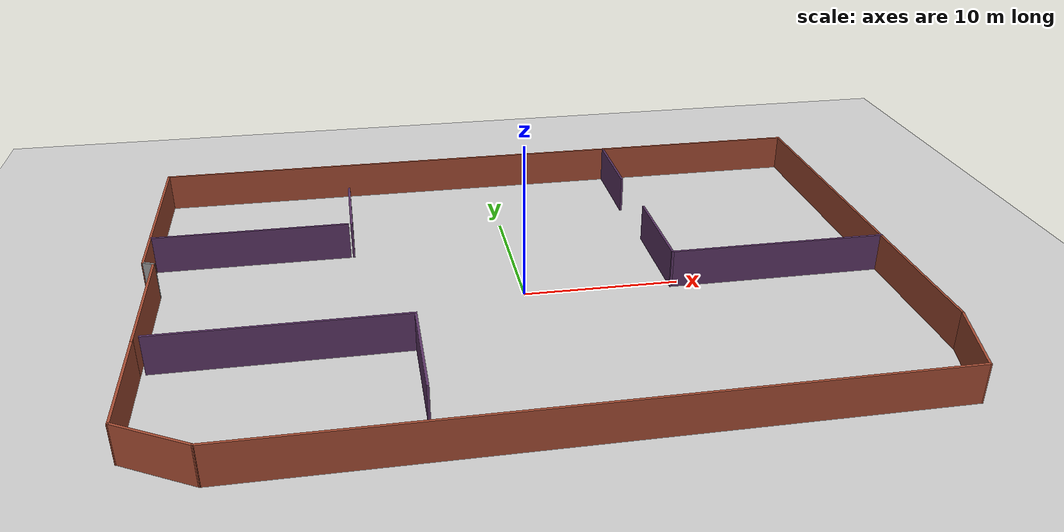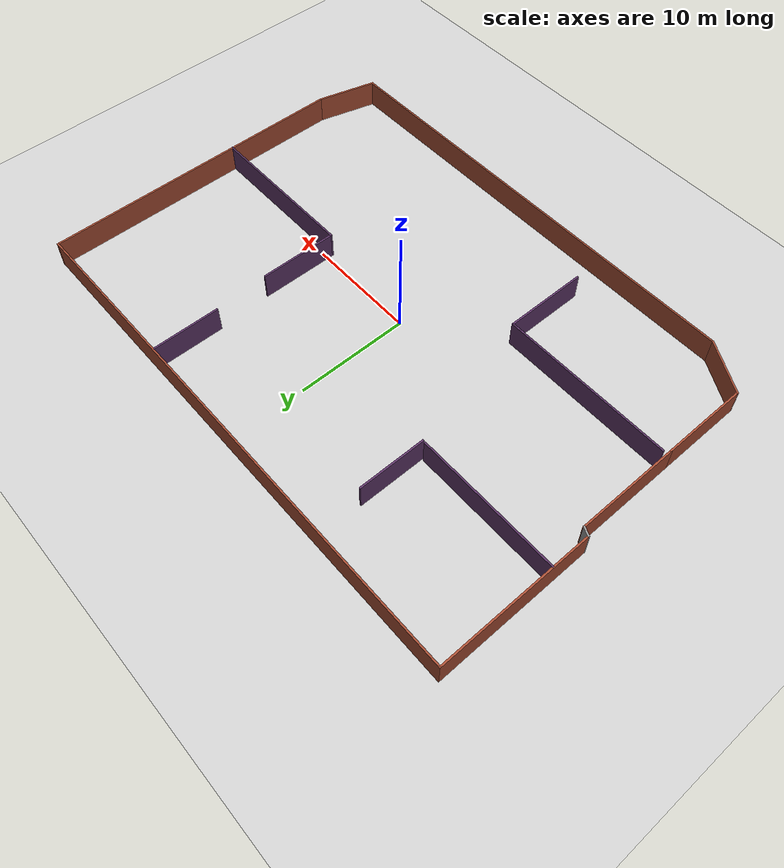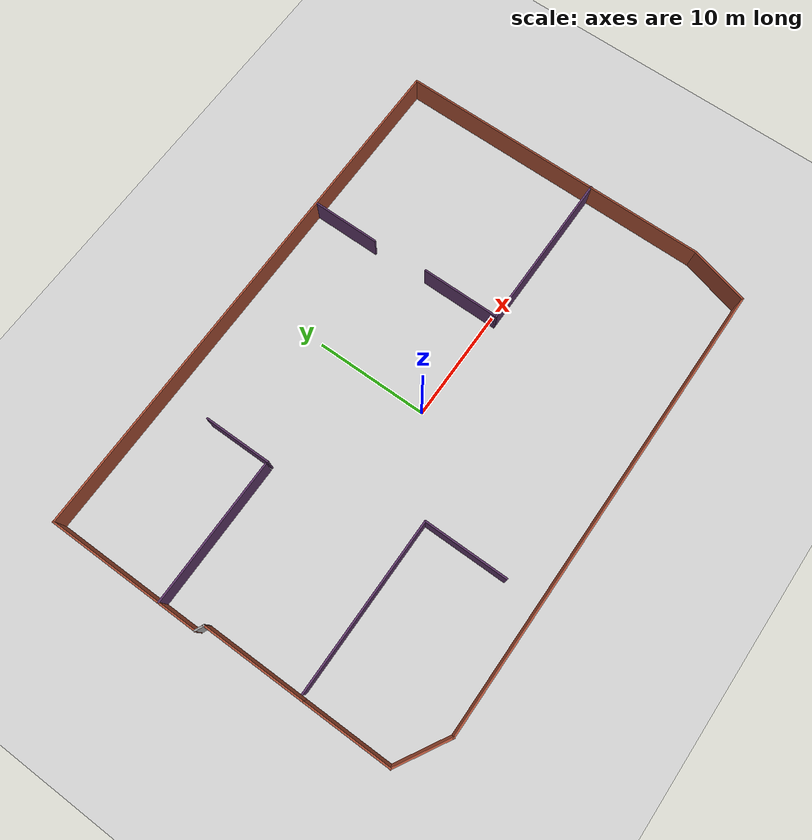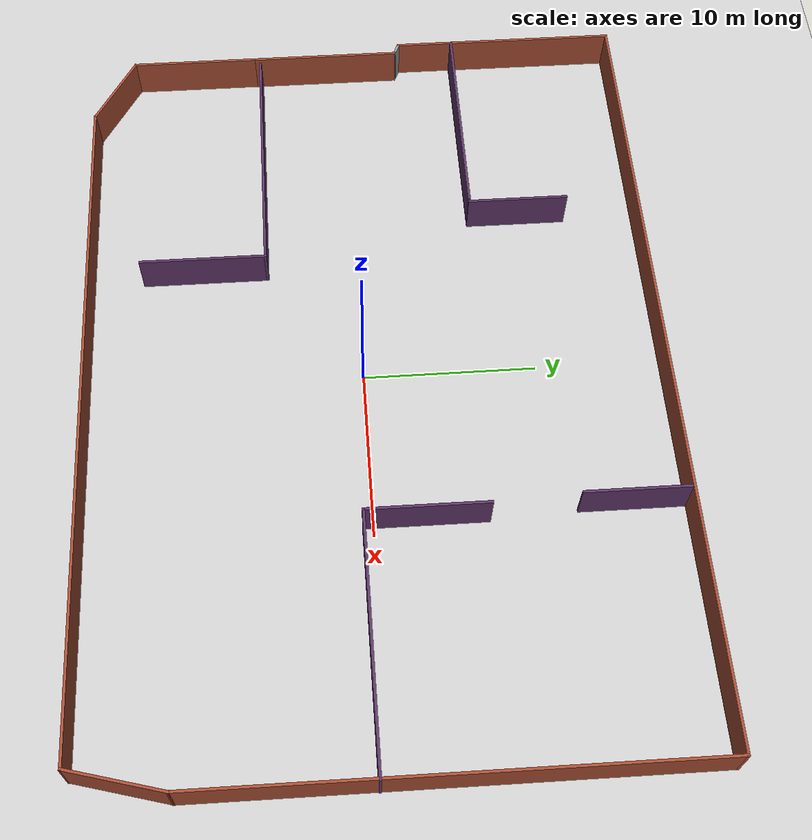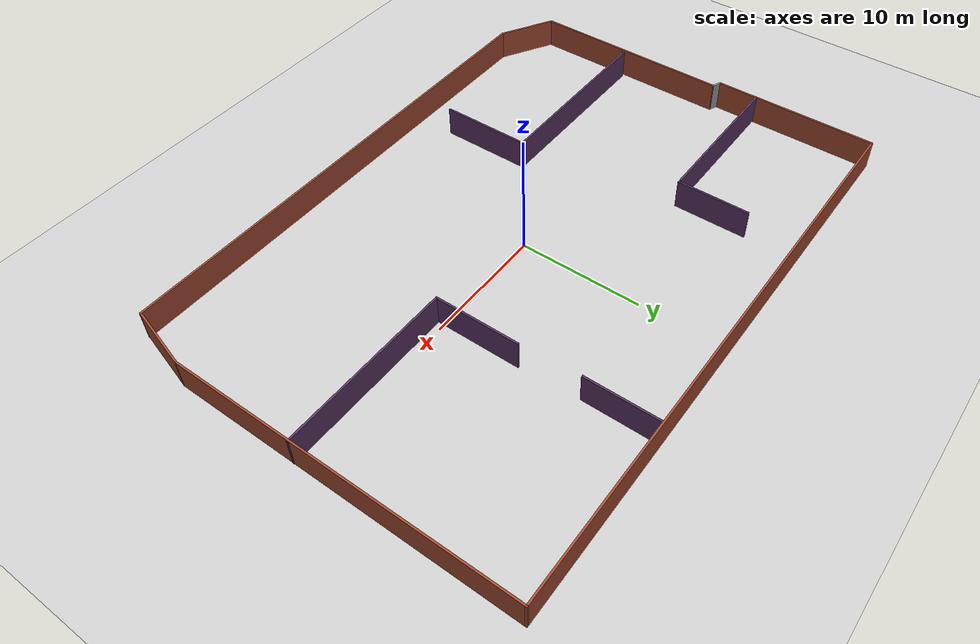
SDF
<sdf version="1.7">
 <world name="default">
  <light name="sun" type="directional">
   <pose>0 0 10 0 -0 0</pose>
   <diffuse>0.8 0.8 0.8 1</diffuse>
   <specular>0.2 0.2 0.2 1</specular>
   <attenuation>
    <range>1000</range>
    <constant>0.9</constant>
    <linear>0.01</linear>
    <quadratic>0.001</quadratic>
   </attenuation>
   <direction>-0.5 0.1 -0.9</direction>
   <spot><inner_angle>0</inner_angle><outer_angle>0</outer_angle><falloff>0</falloff></spot>
  </light>
  <model name="ground_plane">
   <static>1</static>
   <link name="link">
    <collision name="collision">
     <geometry><plane><normal>0 0 1</normal><size>100 100</size></plane></geometry>
     <surface>
      <contact><collide_bitmask>65535</collide_bitmask></contact>
      <friction><ode><mu>100</mu><mu2>50</mu2></ode></friction>
     </surface>
    </collision>
    <visual name="visual">
     <cast_shadows>0</cast_shadows>
     <geometry><plane><normal>0 0 1</normal><size>100 100</size></plane></geometry>
     <material>
      <script><uri>file://media/materials/scripts/gazebo.material</uri><name>Gazebo/Grey</name></script>
     </material>
    </visual>
   </link>
  </model>
  <gravity>0 0 -9.8</gravity>
  <magnetic_field>6e-06 2.3e-05 -4.2e-05</magnetic_field>
  <atmosphere type="adiabatic"/>
  <physics type="ode">
   <max_step_size>0.001</max_step_size>
   <real_time_factor>1</real_time_factor>
   <real_time_update_rate>1000</real_time_update_rate>
  </physics>
  <scene><ambient>0.4 0.4 0.4 1</ambient><background>0.7 0.7 0.7 1</background><shadows>1</shadows></scene>
  <spherical_coordinates>
   <surface_model>EARTH_WGS84</surface_model>
   <latitude_deg>0</latitude_deg>
   <longitude_deg>0</longitude_deg>
   <elevation>0</elevation>
   <heading_deg>0</heading_deg>
  </spherical_coordinates>
  <model name="big_world">
   <pose>0.070394 0.694653 0 0 -0 0</pose>
   <link name="Wall_1">
    <collision name="Wall_1_Collision">
     <geometry><box><size>9.25 0.15 2.5</size></box></geometry>
     <pose>0 0 1.25 0 -0 0</pose>
    </collision>
    <visual name="Wall_1_Visual">
     <pose>0 0 1.25 0 -0 0</pose>
     <geometry><box><size>9.25 0.15 2.5</size></box></geometry>
     <material>
      <script><uri>file://media/materials/scripts/gazebo.material</uri><name>Gazebo/Bricks</name></script>
      <ambient>1 1 1 1</ambient>
     </material>
     <meta><layer>0</layer></meta>
    </visual>
    <pose>-22.7662 -1.92013 0 0 -0 -1.5708</pose>
   </link>
   <link name="Wall_11">
    <collision name="Wall_11_Collision">
     <geometry><box><size>12.75 0.15 2.5</size></box></geometry>
     <pose>0 0 1.25 0 -0 0</pose>
    </collision>
    <visual name="Wall_11_Visual">
     <pose>0 0 1.25 0 -0 0</pose>
     <geometry><box><size>12.75 0.15 2.5</size></box></geometry>
     <material>
      <script><uri>file://media/materials/scripts/gazebo.material</uri><name>Gazebo/Grey</name></script>
      <ambient>0.360784 0.207843 0.4 1</ambient>
     </material>
     <meta><layer>0</layer></meta>
    </visual>
    <pose>-17.0789 6.34576 0 0 -0 0</pose>
   </link>
   <link name="Wall_14">
    <collision name="Wall_14_Collision">
     <geometry><box><size>6 0.15 2.5</size></box></geometry>
     <pose>0 0 1.25 0 -0 0</pose>
    </collision>
    <visual name="Wall_14_Visual">
     <pose>0 0 1.25 0 -0 0</pose>
     <geometry><box><size>6 0.15 2.5</size></box></geometry>
     <material>
      <script><uri>file://media/materials/scripts/gazebo.material</uri><name>Gazebo/Grey</name></script>
      <ambient>0.360784 0.207843 0.4 1</ambient>
     </material>
     <meta><layer>0</layer></meta>
    </visual>
    <pose>-10.5269 9.27254 0 0 -0 1.5708</pose>
   </link>
   <link name="Wall_16">
    <collision name="Wall_16_Collision">
     <geometry><box><size>14.25 0.15 2.5</size></box></geometry>
     <pose>0 0 1.25 0 -0 0</pose>
    </collision>
    <visual name="Wall_16_Visual">
     <pose>0 0 1.25 0 -0 0</pose>
     <geometry><box><size>14.25 0.15 2.5</size></box></geometry>
     <material>
      <script><uri>file://media/materials/scripts/gazebo.material</uri><name>Gazebo/Grey</name></script>
      <ambient>0.360784 0.207843 0.4 1</ambient>
     </material>
     <meta><layer>0</layer></meta>
    </visual>
    <pose>16.4051 -1.22608 0 0 -0 3.14159</pose>
   </link>
   <link name="Wall_17">
    <collision name="Wall_17_Collision">
     <geometry><box><size>7 0.15 2.5</size></box></geometry>
     <pose>0 0 1.25 0 -0 0</pose>
    </collision>
    <visual name="Wall_17_Visual">
     <pose>0 0 1.25 0 -0 0</pose>
     <geometry><box><size>7 0.15 2.5</size></box></geometry>
     <material>
      <script><uri>file://media/materials/scripts/gazebo.material</uri><name>Gazebo/Grey</name></script>
      <ambient>0.360784 0.207843 0.4 1</ambient>
     </material>
     <meta><layer>0</layer></meta>
    </visual>
    <pose>9.35512 2.19892 0 0 -0 1.5708</pose>
   </link>
   <link name="Wall_19">
    <collision name="Wall_19_Collision">
     <geometry><box><size>6 0.15 2.5</size></box></geometry>
     <pose>0 0 1.25 0 -0 0</pose>
    </collision>
    <visual name="Wall_19_Visual">
     <pose>0 0 1.25 0 -0 0</pose>
     <geometry><box><size>6 0.15 2.5</size></box></geometry>
     <material>
      <script><uri>file://media/materials/scripts/gazebo.material</uri><name>Gazebo/Grey</name></script>
      <ambient>0.360784 0.207843 0.4 1</ambient>
     </material>
     <meta><layer>0</layer></meta>
    </visual>
    <pose>9.08103 13.4963 0 0 -0 -1.5708</pose>
   </link>
   <link name="Wall_2">
    <collision name="Wall_2_Collision">
     <geometry><box><size>7.75 0.15 2.5</size></box></geometry>
     <pose>0 0 1.25 0 -0 0</pose>
    </collision>
    <visual name="Wall_2_Visual">
     <pose>0 0 1.25 0 -0 0</pose>
     <geometry><box><size>7.75 0.15 2.5</size></box></geometry>
     <material>
      <script><uri>file://media/materials/scripts/gazebo.material</uri><name>Gazebo/Bricks</name></script>
      <ambient>1 1 1 1</ambient>
     </material>
     <meta><layer>0</layer></meta>
    </visual>
    <pose>-22.7662 -10.2701 0 0 -0 -1.5708</pose>
   </link>
   <link name="Wall_21">
    <collision name="Wall_21_Collision">
     <geometry><box><size>15.25 0.15 2.5</size></box></geometry>
     <pose>0 0 1.25 0 -0 0</pose>
    </collision>
    <visual name="Wall_21_Visual">
     <pose>0 0 1.25 0 -0 0</pose>
     <geometry><box><size>15.25 0.15 2.5</size></box></geometry>
     <material>
      <script><uri>file://media/materials/scripts/gazebo.material</uri><name>Gazebo/Grey</name></script>
      <ambient>0.360784 0.207843 0.4 1</ambient>
     </material>
     <meta><layer>0</layer></meta>
    </visual>
    <pose>-14.8213 -6.06483 0 0 -0 7e-06</pose>
   </link>
   <link name="Wall_22">
    <collision name="Wall_22_Collision">
     <geometry><box><size>7.5 0.15 2.5</size></box></geometry>
     <pose>0 0 1.25 0 -0 0</pose>
    </collision>
    <visual name="Wall_22_Visual">
     <pose>0 0 1.25 0 -0 0</pose>
     <geometry><box><size>7.5 0.15 2.5</size></box></geometry>
     <material>
      <script><uri>file://media/materials/scripts/gazebo.material</uri><name>Gazebo/Grey</name></script>
      <ambient>0.360784 0.207843 0.4 1</ambient>
     </material>
     <meta><layer>0</layer></meta>
    </visual>
    <pose>-7.27147 -9.73978 0 0 -0 -1.5708</pose>
   </link>
   <link name="Wall_3">
    <collision name="Wall_3_Collision">
     <geometry><box><size>5 0.15 2.5</size></box></geometry>
     <pose>0 0 1.25 0 -0 0</pose>
    </collision>
    <visual name="Wall_3_Visual">
     <pose>0 0 1.25 0 -0 0</pose>
     <geometry><box><size>5 0.15 2.5</size></box></geometry>
     <material>
      <script><uri>file://media/materials/scripts/gazebo.material</uri><name>Gazebo/Bricks</name></script>
      <ambient>1 1 1 1</ambient>
     </material>
     <meta><layer>0</layer></meta>
    </visual>
    <pose>-20.6661 -15.2826 0 0 -0 -0.523599</pose>
   </link>
   <link name="Wall_4">
    <collision name="Wall_4_Collision">
     <geometry><box><size>40.75 0.15 2.5</size></box></geometry>
     <pose>0 0 1.25 0 -0 0</pose>
    </collision>
    <visual name="Wall_4_Visual">
     <pose>0 0 1.25 0 -0 0</pose>
     <geometry><box><size>40.75 0.15 2.5</size></box></geometry>
     <material>
      <script><uri>file://media/materials/scripts/gazebo.material</uri><name>Gazebo/Bricks</name></script>
      <ambient>1 1 1 1</ambient>
     </material>
     <meta><layer>0</layer></meta>
    </visual>
    <pose>1.73405 -16.4951 0 0 -0 0</pose>
   </link>
   <link name="Wall_5">
    <collision name="Wall_5_Collision">
     <geometry><box><size>5.5 0.15 2.5</size></box></geometry>
     <pose>0 0 1.25 0 -0 0</pose>
    </collision>
    <visual name="Wall_5_Visual">
     <pose>0 0 1.25 0 -0 0</pose>
     <geometry><box><size>5.5 0.15 2.5</size></box></geometry>
     <material>
      <script><uri>file://media/materials/scripts/gazebo.material</uri><name>Gazebo/Bricks</name></script>
      <ambient>1 1 1 1</ambient>
     </material>
     <meta><layer>0</layer></meta>
    </visual>
    <pose>22.7264 -13.9113 0 0 -0 1.309</pose>
   </link>
   <link name="Wall_6">
    <collision name="Wall_6_Collision">
     <geometry><box><size>28 0.15 2.5</size></box></geometry>
     <pose>0 0 1.25 0 -0 0</pose>
    </collision>
    <visual name="Wall_6_Visual">
     <pose>0 0 1.25 0 -0 0</pose>
     <geometry><box><size>28 0.15 2.5</size></box></geometry>
     <material>
      <script><uri>file://media/materials/scripts/gazebo.material</uri><name>Gazebo/Bricks</name></script>
      <ambient>1 1 1 1</ambient>
     </material>
     <meta><layer>0</layer></meta>
    </visual>
    <pose>23.4187 2.59758 0 0 -0 1.5708</pose>
   </link>
   <link name="Wall_7">
    <collision name="Wall_7_Collision">
     <geometry><box><size>47 0.15 2.5</size></box></geometry>
     <pose>0 0 1.25 0 -0 0</pose>
    </collision>
    <visual name="Wall_7_Visual">
     <pose>0 0 1.25 0 -0 0</pose>
     <geometry><box><size>47 0.15 2.5</size></box></geometry>
     <material>
      <script><uri>file://media/materials/scripts/gazebo.material</uri><name>Gazebo/Bricks</name></script>
      <ambient>1 1 1 1</ambient>
     </material>
     <meta><layer>0</layer></meta>
    </visual>
    <pose>-0.006265 16.5226 0 0 -0 3.14159</pose>
   </link>
   <link name="Wall_8">
    <collision name="Wall_8_Collision">
     <geometry><box><size>13.75 0.15 2.5</size></box></geometry>
     <pose>0 0 1.25 0 -0 0</pose>
    </collision>
    <visual name="Wall_8_Visual">
     <pose>0 0 1.25 0 -0 0</pose>
     <geometry><box><size>13.75 0.15 2.5</size></box></geometry>
     <material>
      <script><uri>file://media/materials/scripts/gazebo.material</uri><name>Gazebo/Bricks</name></script>
      <ambient>1 1 1 1</ambient>
     </material>
     <meta><layer>0</layer></meta>
    </visual>
    <pose>-23.4313 9.72258 0 0 -0 -1.5708</pose>
   </link>
   <link name="Wall_9">
    <collision name="Wall_9_Collision">
     <geometry><box><size>0.876654 0.15 2.5</size></box></geometry>
     <pose>0 0 1.25 0 -0 0</pose>
    </collision>
    <visual name="Wall_9_Visual">
     <pose>0 0 1.25 0 -0 0</pose>
     <geometry><box><size>0.876654 0.15 2.5</size></box></geometry>
     <material>
      <script><uri>file://media/materials/scripts/gazebo.material</uri><name>Gazebo/Grey</name></script>
      <ambient>1 1 1 1</ambient>
     </material>
     <meta><layer>0</layer></meta>
    </visual>
    <pose>-23.0987 2.77623 0 0 -0 -0.414584</pose>
   </link>
   <static>1</static>
  </model>
 </world>
</sdf>
